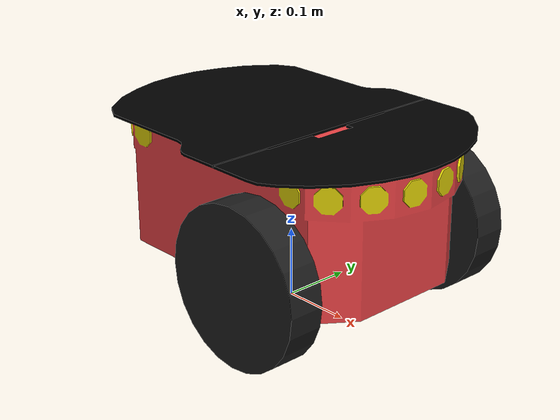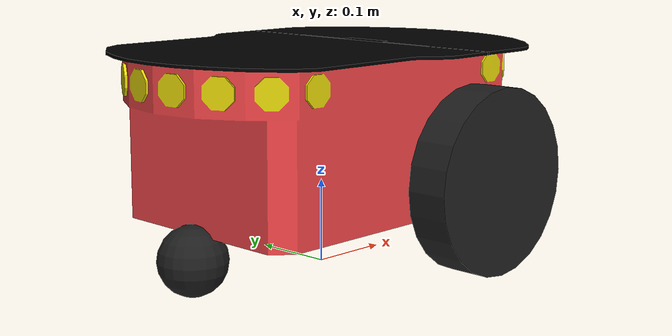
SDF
<?xml version="1.0" ?>
<sdf version="1.6">
  <model name="pioneer3dx">
    <link name="chassis">
      <pose>0 0 0.16 0 0 0</pose>
      <inertial>
        <mass>5.67</mass>
        <inertia>
          <ixx>0.07</ixx>
          <iyy>0.08</iyy>
          <izz>0.10</izz>
          <ixy>0</ixy>
          <ixz>0</ixz>
          <iyz>0</iyz>
        </inertia>
      </inertial>
      <collision name="collision">
        <geometry>
          <box>
            <size>0.445 0.277 0.17</size>
          </box>
        </geometry>
      </collision>
      <collision name="castor_collision">
        <pose>-0.200 0 -0.12 0 0 0</pose>
        <geometry>
          <sphere>
            <radius>0.04</radius>
          </sphere>
        </geometry>
        <surface>
          <friction>
            <ode>
              <mu>0</mu>
              <mu2>0</mu2>
              <slip1>1.0</slip1>
              <slip2>1.0</slip2>
            </ode>
          </friction>
        </surface>
      </collision>
      <visual name="visual">
        <pose>0 0 0.04 0 0 0</pose>
        <geometry>
          <mesh>
            <uri>model://pioneer3dx/meshes/chassis.dae</uri>
          </mesh>
        </geometry>
      </visual>
      <visual name="castor_visual">
        <pose>-0.200 0 -0.12 0 0 0</pose>
        <geometry>
          <sphere>
            <radius>0.04</radius>
          </sphere>
        </geometry>
        <material>
          <script>
            <uri>file://media/materials/scripts/gazebo.material</uri>
            <name>Gazebo/FlatBlack</name>
          </script>
        </material>
      </visual>
      <sensor name='gpu_lidar' type='gpu_lidar'>
        <topic>lidar</topic>
        <update_rate>10</update_rate>
        <lidar>
          <scan>
            <horizontal>
              <samples>10</samples>
              <resolution>1</resolution>
              <min_angle>-1.570796</min_angle>
              <max_angle>1.570796</max_angle>
            </horizontal>
            <vertical>
              <samples>1</samples>
              <min_angle>0</min_angle>
              <max_angle>0</max_angle>
            </vertical>
          </scan>
          <range>
            <min>0.1</min>
            <max>5.0</max>
            <resolution>0.01</resolution>
          </range>
        </lidar>
        <pose frame=''>0.12 0 0.26 0 -0 0</pose>
      </sensor>

    </link>
    <link name="right_wheel">
      <pose>0.1 -.17 0.11 0 1.5707 1.5707</pose>
      <inertial>
        <mass>1.5</mass>
        <inertia>
          <ixx>0.0051</ixx>
          <iyy>0.0051</iyy>
          <izz>0.0090</izz>
          <ixy>0</ixy>
          <ixz>0</ixz>
          <iyz>0</iyz>
        </inertia>
      </inertial>
      <collision name="collision">
        <geometry>
          <cylinder>
            <radius>0.11</radius>
            <length>0.05</length>
          </cylinder>
        </geometry>
        <surface>
          <friction>
            <ode>
              <mu>100000.0</mu>
              <mu2>100000.0</mu2>
              <slip1>0.0</slip1>
              <slip2>0.0</slip2>
            </ode>
          </friction>
        </surface>
      </collision>
      <visual name="visual">
        <geometry>
          <cylinder>
            <radius>0.11</radius>
            <length>0.05</length>
          </cylinder>
        </geometry>
        <material>
          <script>
            <uri>file://media/materials/scripts/gazebo.material</uri>
            <name>Gazebo/FlatBlack</name>
          </script>
        </material>
      </visual>
    </link>
    <link name="left_wheel">
      <pose>0.1 .17 0.11 0 1.5707 1.5707</pose>
      <inertial>
        <mass>1.5</mass>
        <inertia>
          <ixx>0.0051</ixx>
          <iyy>0.0051</iyy>
          <izz>0.0090</izz>
          <ixy>0</ixy>
          <ixz>0</ixz>
          <iyz>0</iyz>
        </inertia>
      </inertial>
      <collision name="collision">
        <geometry>
          <cylinder>
            <radius>0.11</radius>
            <length>0.05</length>
          </cylinder>
        </geometry>
        <surface>
          <friction>
            <ode>
              <mu>100000.0</mu>
              <mu2>100000.0</mu2>
              <slip1>0.0</slip1>
              <slip2>0.0</slip2>
            </ode>
          </friction>
        </surface>
      </collision>
      <visual name="visual">
        <geometry>
          <cylinder>
            <radius>0.11</radius>
            <length>0.05</length>
          </cylinder>
        </geometry>
        <material>
          <script>
            <uri>file://media/materials/scripts/gazebo.material</uri>
            <name>Gazebo/FlatBlack</name>
          </script>
        </material>
      </visual>
    </link>
    <joint type="revolute" name="left_wheel_hinge">
      <pose>0 0 -0.03 0 0 0</pose>
      <child>left_wheel</child>
      <parent>chassis</parent>
      <axis>
        <xyz>0 1 0</xyz>
        <use_parent_model_frame>true</use_parent_model_frame>
      </axis>
    </joint>
    <joint type="revolute" name="right_wheel_hinge">
      <pose>0 0 0.03 0 0 0</pose>
      <child>right_wheel</child>
      <parent>chassis</parent>
      <axis>
        <xyz>0 1 0</xyz>
        <use_parent_model_frame>true</use_parent_model_frame>
      </axis>
    </joint>
    <plugin filename="gz-sim-diff-drive-system" name="gz::sim::systems::DiffDrive">
      <left_joint>left_wheel_hinge</left_joint>
      <right_joint>right_wheel_hinge</right_joint>
    </plugin>
  </model>
</sdf>
